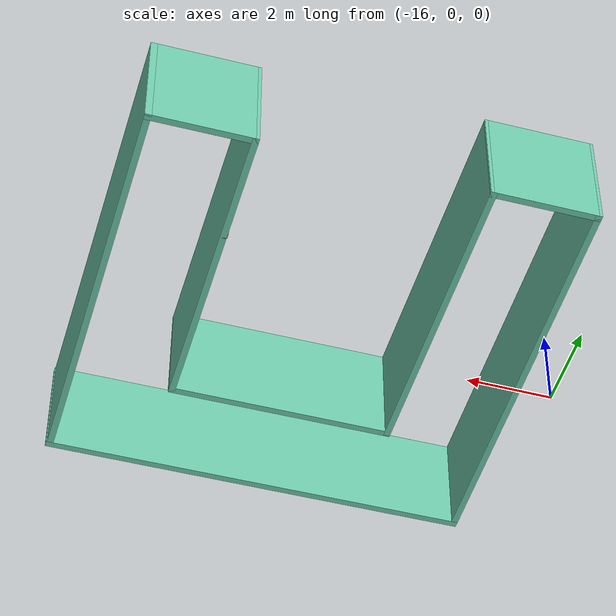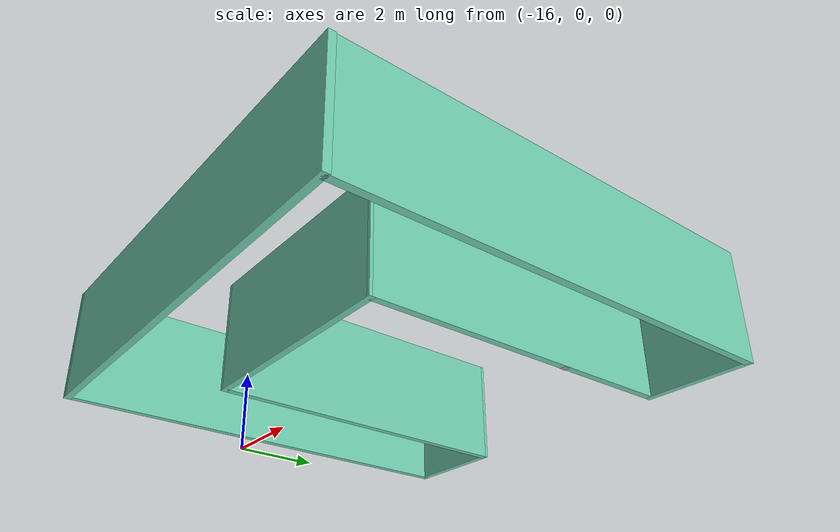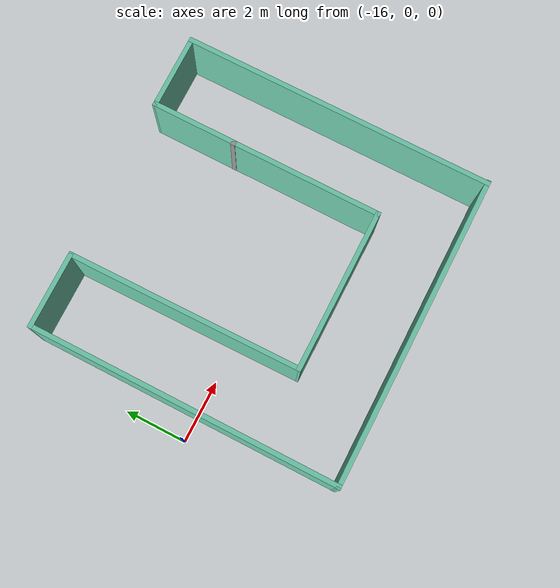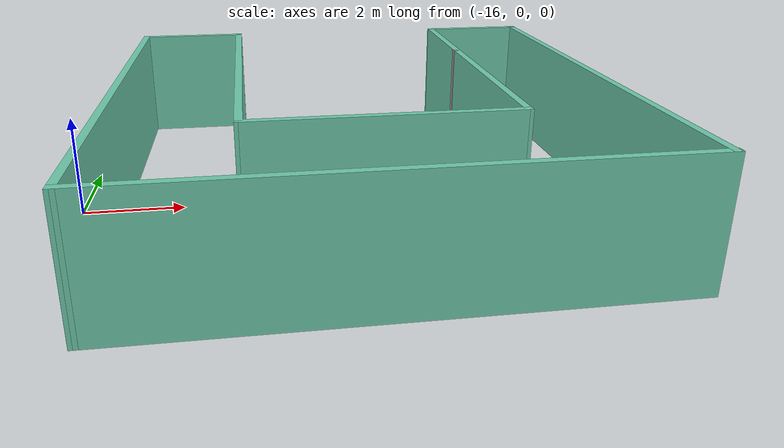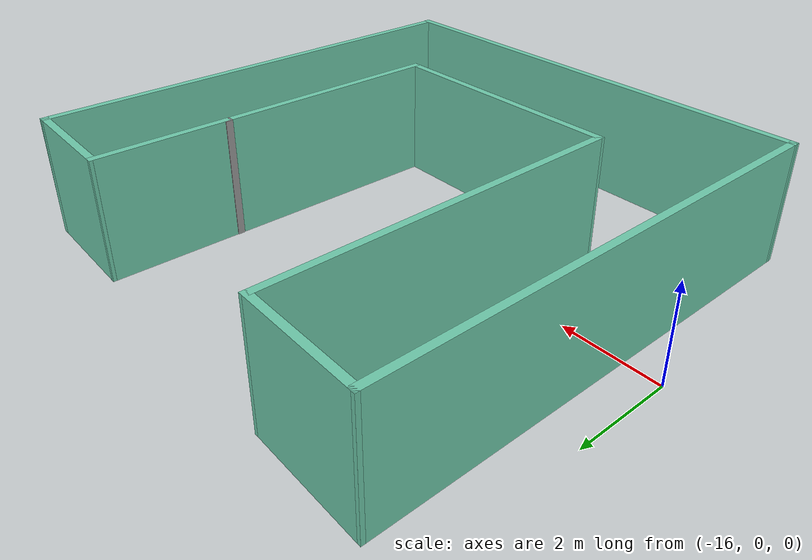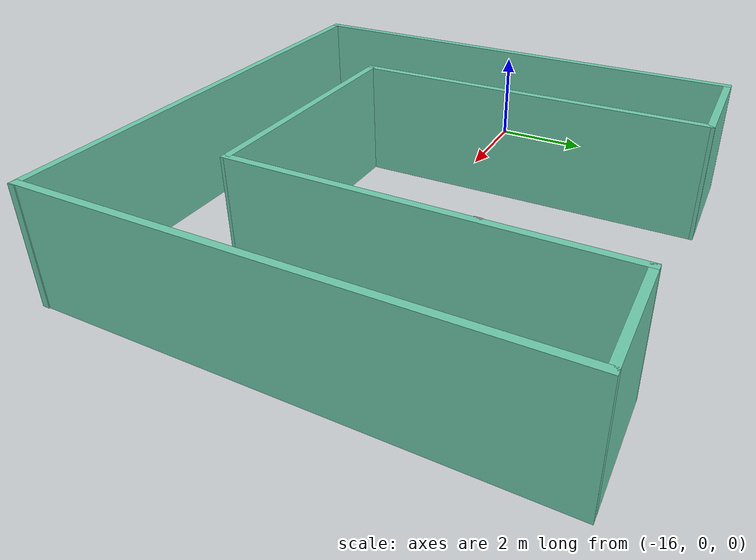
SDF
<?xml version='1.0'?>
<sdf version='1.6'>
  <model name='simple'>
    <pose frame=''>-10.2725 0.328758 0 0 -0 0</pose>
    <link name='Wall_13'>
      <collision name='Wall_13_Collision'>
        <geometry>
          <box>
            <size>2.43882 0.15 2.5</size>
          </box>
        </geometry>
        <pose frame=''>0 0 1.25 0 -0 0</pose>
      </collision>
      <visual name='Wall_13_Visual'>
        <pose frame=''>0 0 1.25 0 -0 0</pose>
        <geometry>
          <box>
            <size>2.43882 0.15 2.5</size>
          </box>
        </geometry>
        <material>
          <script>
            <uri>file://media/materials/scripts/gazebo.material</uri>
            <name>Gazebo/Grey</name>
          </script>
          <ambient>0.435294 0.796078 0.67451 1</ambient>
        </material>
        <meta>
          <layer>0</layer>
        </meta>
      </visual>
      <pose frame=''>3.76217 4.92476 0 0 -0 0</pose>
    </link>
    <link name='Wall_15'>
      <collision name='Wall_15_Collision'>
        <geometry>
          <box>
            <size>10 0.15 2.5</size>
          </box>
        </geometry>
        <pose frame=''>0 0 1.25 0 -0 0</pose>
      </collision>
      <visual name='Wall_15_Visual'>
        <pose frame=''>0 0 1.25 0 -0 0</pose>
        <geometry>
          <box>
            <size>10 0.15 2.5</size>
          </box>
        </geometry>
        <material>
          <script>
            <uri>file://media/materials/scripts/gazebo.material</uri>
            <name>Gazebo/Grey</name>
          </script>
          <ambient>0.435294 0.796078 0.67451 1</ambient>
        </material>
        <meta>
          <layer>0</layer>
        </meta>
      </visual>
      <pose frame=''>5.4e-05 -4.92524 0 0 -0 3.14159</pose>
    </link>
    <link name='Wall_17'>
      <collision name='Wall_17_Collision'>
        <geometry>
          <box>
            <size>10 0.15 2.5</size>
          </box>
        </geometry>
        <pose frame=''>0 0 1.25 0 -0 0</pose>
      </collision>
      <visual name='Wall_17_Visual'>
        <pose frame=''>0 0 1.25 0 -0 0</pose>
        <geometry>
          <box>
            <size>10 0.15 2.5</size>
          </box>
        </geometry>
        <material>
          <script>
            <uri>file://media/materials/scripts/gazebo.material</uri>
            <name>Gazebo/Grey</name>
          </script>
          <ambient>0.435294 0.796078 0.67451 1</ambient>
        </material>
        <meta>
          <layer>0</layer>
        </meta>
      </visual>
      <pose frame=''>-4.91794 -0.00024 0 0 0 -1.57222</pose>
    </link>
    <link name='Wall_19'>
      <collision name='Wall_19_Collision'>
        <geometry>
          <box>
            <size>10 0.15 2.5</size>
          </box>
        </geometry>
        <pose frame=''>0 0 1.25 0 -0 0</pose>
      </collision>
      <visual name='Wall_19_Visual'>
        <pose frame=''>0 0 1.25 0 -0 0</pose>
        <geometry>
          <box>
            <size>10 0.15 2.5</size>
          </box>
        </geometry>
        <material>
          <script>
            <uri>file://media/materials/scripts/gazebo.material</uri>
            <name>Gazebo/Grey</name>
          </script>
          <ambient>0.435294 0.796078 0.67451 1</ambient>
        </material>
        <meta>
          <layer>0</layer>
        </meta>
      </visual>
      <pose frame=''>4.90658 -0.00024 0 0 0 -1.5708</pose>
    </link>
    <link name='Wall_27'>
      <collision name='Wall_27_Collision'>
        <geometry>
          <box>
            <size>7.53775 0.15 2.5</size>
          </box>
        </geometry>
        <pose frame=''>0 0 1.25 0 -0 0</pose>
      </collision>
      <visual name='Wall_27_Visual'>
        <pose frame=''>0 0 1.25 0 -0 0</pose>
        <geometry>
          <box>
            <size>7.53775 0.15 2.5</size>
          </box>
        </geometry>
        <material>
          <script>
            <uri>file://media/materials/scripts/gazebo.material</uri>
            <name>Gazebo/Grey</name>
          </script>
          <ambient>0.435294 0.796078 0.67451 1</ambient>
        </material>
        <meta>
          <layer>0</layer>
        </meta>
      </visual>
      <pose frame=''>-2.53211 1.231 0 0 0 -1.56299</pose>
    </link>
    <link name='Wall_28'>
      <collision name='Wall_28_Collision'>
        <geometry>
          <box>
            <size>5.25 0.15 2.5</size>
          </box>
        </geometry>
        <pose frame=''>0 0 1.25 0 -0 0</pose>
      </collision>
      <visual name='Wall_28_Visual'>
        <pose frame=''>0 0 1.25 0 -0 0</pose>
        <geometry>
          <box>
            <size>5.25 0.15 2.5</size>
          </box>
        </geometry>
        <material>
          <script>
            <uri>file://media/materials/scripts/gazebo.material</uri>
            <name>Gazebo/Grey</name>
          </script>
          <ambient>0.435294 0.796078 0.67451 1</ambient>
        </material>
        <meta>
          <layer>0</layer>
        </meta>
      </visual>
      <pose frame=''>0.046719 -2.46277 0 0 -0 0</pose>
    </link>
    <link name='Wall_33'>
      <collision name='Wall_33_Collision'>
        <geometry>
          <box>
            <size>0.15 0.15 2.5</size>
          </box>
        </geometry>
        <pose frame=''>0 0 1.25 0 -0 0</pose>
      </collision>
      <visual name='Wall_33_Visual'>
        <pose frame=''>0 0 1.25 0 -0 0</pose>
        <geometry>
          <box>
            <size>0.15 0.15 2.5</size>
          </box>
        </geometry>
        <material>
          <script>
            <uri>file://media/materials/scripts/gazebo.material</uri>
            <name>Gazebo/Grey</name>
          </script>
          <ambient>1 1 1 1</ambient>
        </material>
        <meta>
          <layer>0</layer>
        </meta>
      </visual>
      <pose frame=''>2.59672 2.28723 0 0 -0 0</pose>
    </link>
    <link name='Wall_37'>
      <collision name='Wall_37_Collision'>
        <geometry>
          <box>
            <size>7.53756 0.15 2.5</size>
          </box>
        </geometry>
        <pose frame=''>0 0 1.25 0 -0 0</pose>
      </collision>
      <visual name='Wall_37_Visual'>
        <pose frame=''>0 0 1.25 0 -0 0</pose>
        <geometry>
          <box>
            <size>7.53756 0.15 2.5</size>
          </box>
        </geometry>
        <material>
          <script>
            <uri>file://media/materials/scripts/gazebo.material</uri>
            <name>Gazebo/Grey</name>
          </script>
          <ambient>0.435294 0.796078 0.67451 1</ambient>
        </material>
        <meta>
          <layer>0</layer>
        </meta>
      </visual>
      <pose frame=''>2.60724 1.231 0 0 0 -1.57364</pose>
    </link>
    <link name='Wall_9'>
      <collision name='Wall_9_Collision'>
        <geometry>
          <box>
            <size>2.5 0.15 2.5</size>
          </box>
        </geometry>
        <pose frame=''>0 0 1.25 0 -0 0</pose>
      </collision>
      <visual name='Wall_9_Visual'>
        <pose frame=''>0 0 1.25 0 -0 0</pose>
        <geometry>
          <box>
            <size>2.5 0.15 2.5</size>
          </box>
        </geometry>
        <material>
          <script>
            <uri>file://media/materials/scripts/gazebo.material</uri>
            <name>Gazebo/Grey</name>
          </script>
          <ambient>0.435294 0.796078 0.67451 1</ambient>
        </material>
        <meta>
          <layer>0</layer>
        </meta>
      </visual>
      <pose frame=''>-3.73594 4.92476 0 0 -0 0</pose>
    </link>
    <static>1</static>
  </model>
</sdf>
